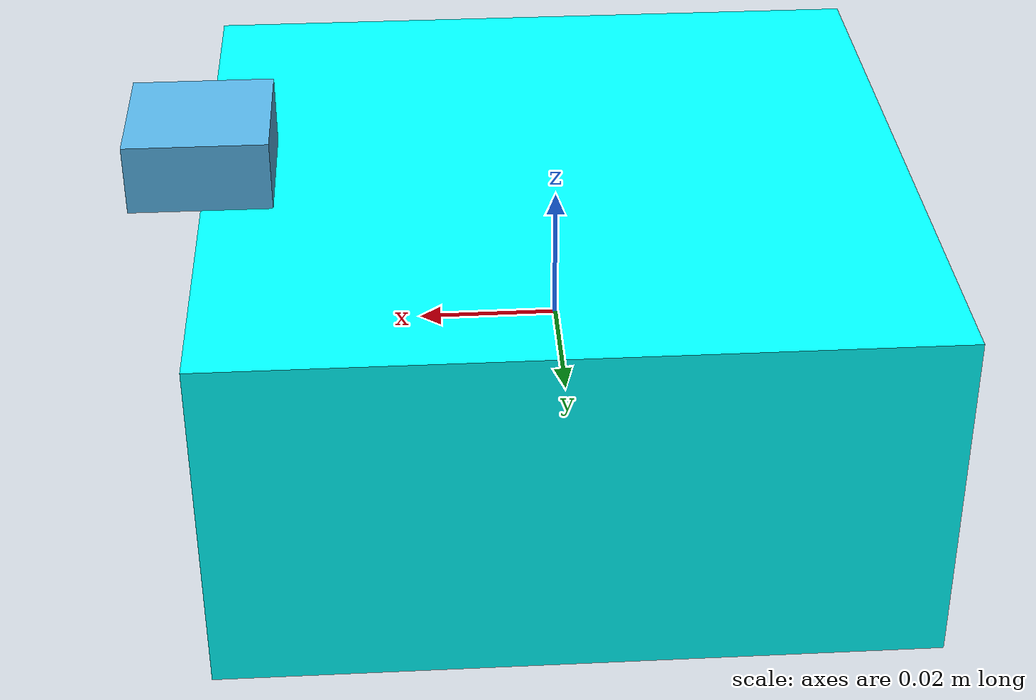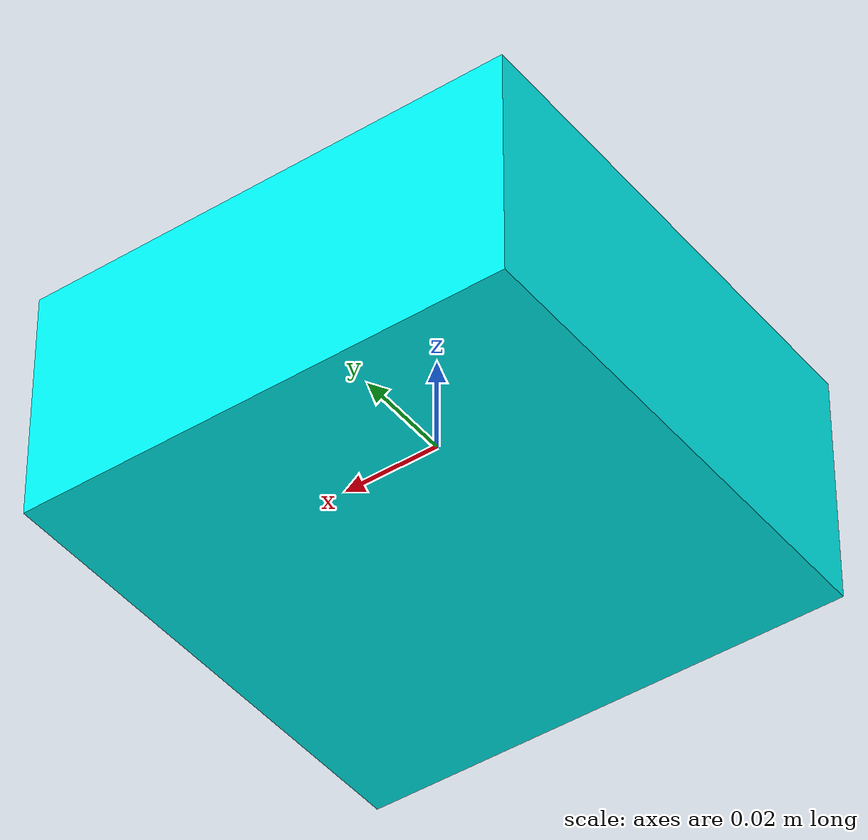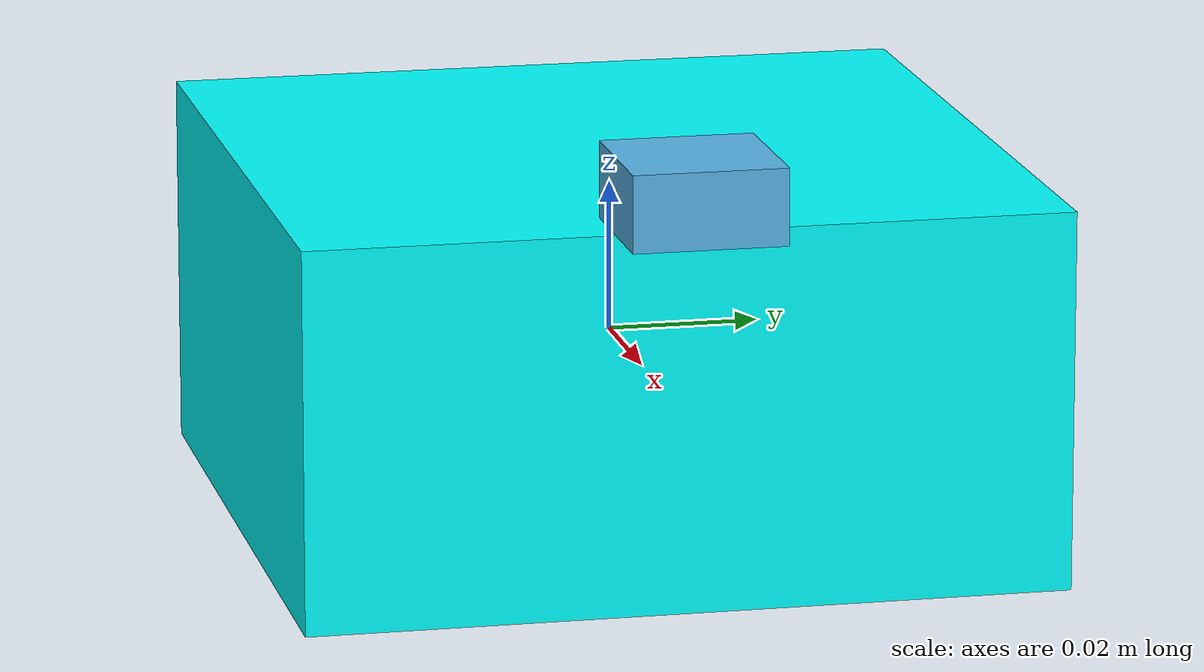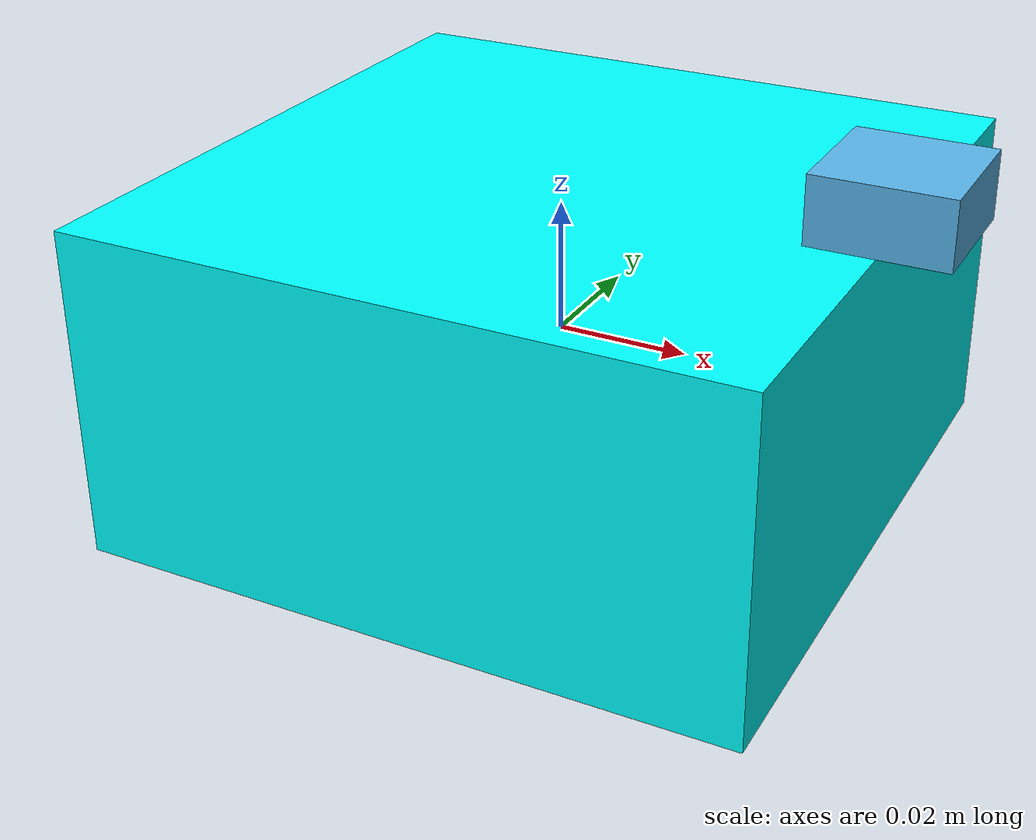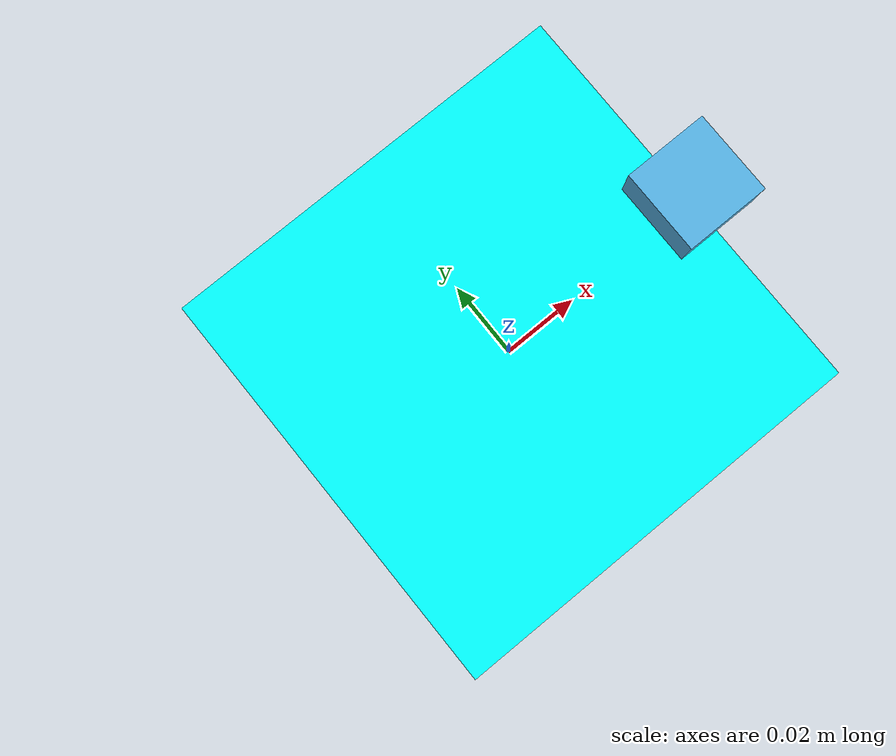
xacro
<?xml version='1.0'?>

<robot name="robot" xmlns:xacro="http://www.ros.org/wiki/xacro">

  <xacro:property name="camera_width" value="0.02"/>
  <xacro:property name="camera_length" value="0.02"/>
  <xacro:property name="camera_height" value="0.01"/>
  <xacro:property name="camera_mass" value="0.2"/>
  <xacro:property name="body_width" value="0.1"/>
  <xacro:property name="body_length" value="0.1"/>
  <xacro:property name="body_height" value="0.05"/>
  <xacro:property name="body_mass" value="0.5"/>

  <xacro:include filename="$(find flight_test)/urdf/macros.xacro"/>

  <link name='body'>
    <xacro:box_inertial name="body" m="${body_mass}" x="${body_length}" y="${body_width}" z="${body_height}"/>
    <collision name='body_collision'>
      <geometry>
        <box size="${body_length} ${body_width} ${body_height}"/>
      </geometry>
    </collision>
    <visual name='body_visual'>
      <origin xyz="0 0 0" rpy=" 0 0 0"/>
      <geometry>
        <box size="${body_length} ${body_width} ${body_height}"/>
      </geometry>
      <material name="Cyan">
        <color rgba="0 1.0 1.0 1.0"/>
      </material>
    </visual>
  </link>

  <gazebo reference="body">
    <material>Gazebo/Orange</material>
  </gazebo>

  <link name='camera_link'>
    <xacro:box_inertial name="camera_link" m="${camera_mass}" x="${camera_width}" y="${camera_length}" z="${camera_height}"/>
    <collision name='camera_link_collision'>
      <geometry>
        <box size="${camera_length} ${camera_width} ${camera_height}"/>
      </geometry>
    </collision>
    <visual name='camera_link_visual'>
      <origin xyz="0 0 0" rpy=" 0 0 0"/>
      <geometry>
        <box size="${camera_length} ${camera_width} ${camera_height}"/>
      </geometry>
    </visual>
  </link>

  <joint name="camera_joint" type="fixed">
    <parent link="body"/>
    <child link="camera_link"/>
    <origin xyz="${body_length/2} 0 ${body_height/2+camera_height/2}"/>
  </joint>

  <gazebo reference="camera_link">
    <sensor type="camera" name="camera1">
      <update_rate>30.0</update_rate>
      <camera name="head">
        <horizontal_fov>1.3962634</horizontal_fov>
        <image>
          <width>1600</width>
          <height>800</height>
          <format>R8G8B8</format>
        </image>
        <clip>
          <near>0.02</near>
          <far>300</far>
        </clip>
        <noise>
          <type>gaussian</type>
          <!-- Noise is sampled independently per pixel on each frame.
              That pixel's noise value is added to each of its color
              channels, which at that point lie in the range [0,1]. -->
          <mean>0.0</mean>
          <stddev>0.007</stddev>
        </noise>
      </camera>
      <plugin name="camera_controller" filename="libgazebo_ros_camera.so">
        <alwaysOn>true</alwaysOn>
        <updateRate>0.0</updateRate>
        <cameraName>rrbot/camera1</cameraName>
        <imageTopicName>image_raw</imageTopicName>
        <cameraInfoTopicName>camera_info</cameraInfoTopicName>
        <frameName>camera_link</frameName>
        <hackBaseline>0.07</hackBaseline>
        <distortionK1>0.0</distortionK1>
        <distortionK2>0.0</distortionK2>
        <distortionK3>0.0</distortionK3>
        <distortionT1>0.0</distortionT1>
        <distortionT2>0.0</distortionT2>
      </plugin>
    </sensor>
  </gazebo>

  <!-- Thruster Plugin -->
  <gazebo reference = "body">
    <plugin name="thruster_force_plugin" filename="libgazebo_ros_force.so">
      <robotNamespace></robotNamespace>
      <bodyName>body</bodyName>
      <topicName>/thruster_force</topicName>
    </plugin>
  </gazebo>

</robot>
